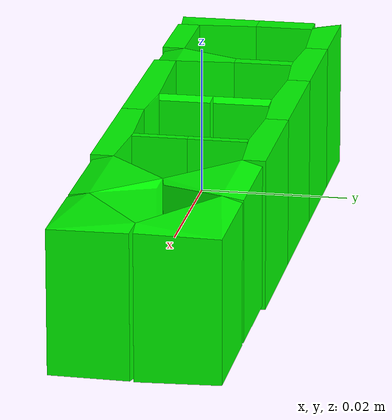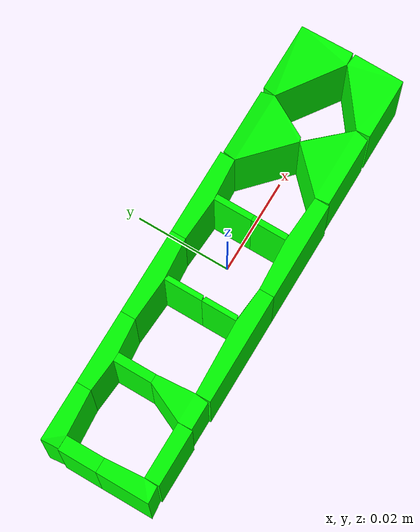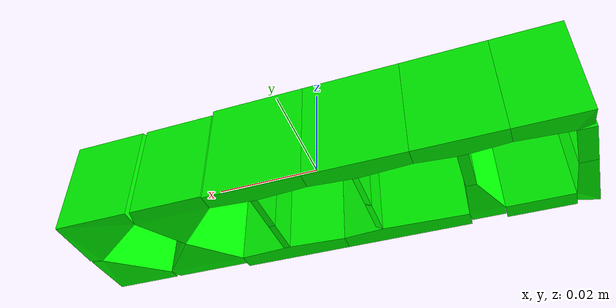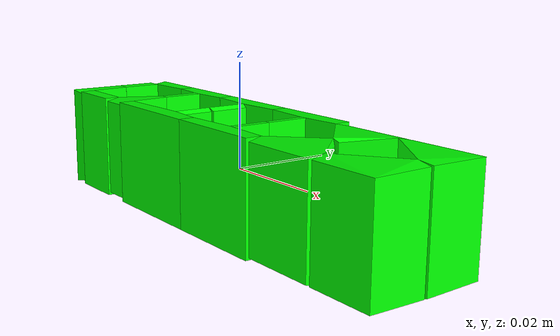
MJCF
<mujoco model="shapenet4-10">
  <asset>
    <mesh file="meshes/shapenet4-10/shapenet4-10_0.stl" name="shapenet4-10_0" scale="0.1 0.1 0.1"/>
    <mesh file="meshes/shapenet4-10/shapenet4-10_1.stl" name="shapenet4-10_1" scale="0.1 0.1 0.1"/>
    <mesh file="meshes/shapenet4-10/shapenet4-10_2.stl" name="shapenet4-10_2" scale="0.1 0.1 0.1"/>
    <mesh file="meshes/shapenet4-10/shapenet4-10_3.stl" name="shapenet4-10_3" scale="0.1 0.1 0.1"/>
    <mesh file="meshes/shapenet4-10/shapenet4-10_4.stl" name="shapenet4-10_4" scale="0.1 0.1 0.1"/>
    <mesh file="meshes/shapenet4-10/shapenet4-10_5.stl" name="shapenet4-10_5" scale="0.1 0.1 0.1"/>
    <mesh file="meshes/shapenet4-10/shapenet4-10_6.stl" name="shapenet4-10_6" scale="0.1 0.1 0.1"/>
    <mesh file="meshes/shapenet4-10/shapenet4-10_7.stl" name="shapenet4-10_7" scale="0.1 0.1 0.1"/>
    <mesh file="meshes/shapenet4-10/shapenet4-10_8.stl" name="shapenet4-10_8" scale="0.1 0.1 0.1"/>
    <mesh file="meshes/shapenet4-10/shapenet4-10_9.stl" name="shapenet4-10_9" scale="0.1 0.1 0.1"/>
    <mesh file="meshes/shapenet4-10/shapenet4-10_10.stl" name="shapenet4-10_10" scale="0.1 0.1 0.1"/>
    <mesh file="meshes/shapenet4-10/shapenet4-10_11.stl" name="shapenet4-10_11" scale="0.1 0.1 0.1"/>
    <mesh file="meshes/shapenet4-10/shapenet4-10_12.stl" name="shapenet4-10_12" scale="0.1 0.1 0.1"/>
    <mesh file="meshes/shapenet4-10/shapenet4-10_13.stl" name="shapenet4-10_13" scale="0.1 0.1 0.1"/>
    <mesh file="meshes/shapenet4-10/shapenet4-10_14.stl" name="shapenet4-10_14" scale="0.1 0.1 0.1"/>
    <mesh file="meshes/shapenet4-10/shapenet4-10_15.stl" name="shapenet4-10_15" scale="0.1 0.1 0.1"/>
    <mesh file="meshes/shapenet4-10/shapenet4-10_16.stl" name="shapenet4-10_16" scale="0.1 0.1 0.1"/>
    <mesh file="meshes/shapenet4-10/shapenet4-10_17.stl" name="shapenet4-10_17" scale="0.1 0.1 0.1"/>
    <mesh file="meshes/shapenet4-10/shapenet4-10_18.stl" name="shapenet4-10_18" scale="0.1 0.1 0.1"/>
  </asset>
  <worldbody>
    <body>
      <body name="collision">
        <geom pos="0 0 0" mesh="shapenet4-10_0" type="mesh" solimp="0.998 0.998 0.001" solref="0.001 1" density="100" friction="0.95 0.3 0.1" rgba="0 1 0 1" group="1" condim="4"/>
        <geom pos="0 0 0" mesh="shapenet4-10_1" type="mesh" solimp="0.998 0.998 0.001" solref="0.001 1" density="100" friction="0.95 0.3 0.1" rgba="0 1 0 1" group="1" condim="4"/>
        <geom pos="0 0 0" mesh="shapenet4-10_2" type="mesh" solimp="0.998 0.998 0.001" solref="0.001 1" density="100" friction="0.95 0.3 0.1" rgba="0 1 0 1" group="1" condim="4"/>
        <geom pos="0 0 0" mesh="shapenet4-10_3" type="mesh" solimp="0.998 0.998 0.001" solref="0.001 1" density="100" friction="0.95 0.3 0.1" rgba="0 1 0 1" group="1" condim="4"/>
        <geom pos="0 0 0" mesh="shapenet4-10_4" type="mesh" solimp="0.998 0.998 0.001" solref="0.001 1" density="100" friction="0.95 0.3 0.1" rgba="0 1 0 1" group="1" condim="4"/>
        <geom pos="0 0 0" mesh="shapenet4-10_5" type="mesh" solimp="0.998 0.998 0.001" solref="0.001 1" density="100" friction="0.95 0.3 0.1" rgba="0 1 0 1" group="1" condim="4"/>
        <geom pos="0 0 0" mesh="shapenet4-10_6" type="mesh" solimp="0.998 0.998 0.001" solref="0.001 1" density="100" friction="0.95 0.3 0.1" rgba="0 1 0 1" group="1" condim="4"/>
        <geom pos="0 0 0" mesh="shapenet4-10_7" type="mesh" solimp="0.998 0.998 0.001" solref="0.001 1" density="100" friction="0.95 0.3 0.1" rgba="0 1 0 1" group="1" condim="4"/>
        <geom pos="0 0 0" mesh="shapenet4-10_8" type="mesh" solimp="0.998 0.998 0.001" solref="0.001 1" density="100" friction="0.95 0.3 0.1" rgba="0 1 0 1" group="1" condim="4"/>
        <geom pos="0 0 0" mesh="shapenet4-10_9" type="mesh" solimp="0.998 0.998 0.001" solref="0.001 1" density="100" friction="0.95 0.3 0.1" rgba="0 1 0 1" group="1" condim="4"/>
        <geom pos="0 0 0" mesh="shapenet4-10_10" type="mesh" solimp="0.998 0.998 0.001" solref="0.001 1" density="100" friction="0.95 0.3 0.1" rgba="0 1 0 1" group="1" condim="4"/>
        <geom pos="0 0 0" mesh="shapenet4-10_11" type="mesh" solimp="0.998 0.998 0.001" solref="0.001 1" density="100" friction="0.95 0.3 0.1" rgba="0 1 0 1" group="1" condim="4"/>
        <geom pos="0 0 0" mesh="shapenet4-10_12" type="mesh" solimp="0.998 0.998 0.001" solref="0.001 1" density="100" friction="0.95 0.3 0.1" rgba="0 1 0 1" group="1" condim="4"/>
        <geom pos="0 0 0" mesh="shapenet4-10_13" type="mesh" solimp="0.998 0.998 0.001" solref="0.001 1" density="100" friction="0.95 0.3 0.1" rgba="0 1 0 1" group="1" condim="4"/>
        <geom pos="0 0 0" mesh="shapenet4-10_14" type="mesh" solimp="0.998 0.998 0.001" solref="0.001 1" density="100" friction="0.95 0.3 0.1" rgba="0 1 0 1" group="1" condim="4"/>
        <geom pos="0 0 0" mesh="shapenet4-10_15" type="mesh" solimp="0.998 0.998 0.001" solref="0.001 1" density="100" friction="0.95 0.3 0.1" rgba="0 1 0 1" group="1" condim="4"/>
        <geom pos="0 0 0" mesh="shapenet4-10_16" type="mesh" solimp="0.998 0.998 0.001" solref="0.001 1" density="100" friction="0.95 0.3 0.1" rgba="0 1 0 1" group="1" condim="4"/>
        <geom pos="0 0 0" mesh="shapenet4-10_17" type="mesh" solimp="0.998 0.998 0.001" solref="0.001 1" density="100" friction="0.95 0.3 0.1" rgba="0 1 0 1" group="1" condim="4"/>
        <geom pos="0 0 0" mesh="shapenet4-10_18" type="mesh" solimp="0.998 0.998 0.001" solref="0.001 1" density="100" friction="0.95 0.3 0.1" rgba="0 1 0 1" group="1" condim="4"/>
      </body>
      <body name="visual">
        <geom pos="0 0 0" mesh="shapenet4-10_0" type="mesh" rgba="0 1 0 1" conaffinity="0" contype="0" group="0" mass="0.0001"/>
        <geom pos="0 0 0" mesh="shapenet4-10_1" type="mesh" rgba="0 1 0 1" conaffinity="0" contype="0" group="0" mass="0.0001"/>
        <geom pos="0 0 0" mesh="shapenet4-10_2" type="mesh" rgba="0 1 0 1" conaffinity="0" contype="0" group="0" mass="0.0001"/>
        <geom pos="0 0 0" mesh="shapenet4-10_3" type="mesh" rgba="0 1 0 1" conaffinity="0" contype="0" group="0" mass="0.0001"/>
        <geom pos="0 0 0" mesh="shapenet4-10_4" type="mesh" rgba="0 1 0 1" conaffinity="0" contype="0" group="0" mass="0.0001"/>
        <geom pos="0 0 0" mesh="shapenet4-10_5" type="mesh" rgba="0 1 0 1" conaffinity="0" contype="0" group="0" mass="0.0001"/>
        <geom pos="0 0 0" mesh="shapenet4-10_6" type="mesh" rgba="0 1 0 1" conaffinity="0" contype="0" group="0" mass="0.0001"/>
        <geom pos="0 0 0" mesh="shapenet4-10_7" type="mesh" rgba="0 1 0 1" conaffinity="0" contype="0" group="0" mass="0.0001"/>
        <geom pos="0 0 0" mesh="shapenet4-10_8" type="mesh" rgba="0 1 0 1" conaffinity="0" contype="0" group="0" mass="0.0001"/>
        <geom pos="0 0 0" mesh="shapenet4-10_9" type="mesh" rgba="0 1 0 1" conaffinity="0" contype="0" group="0" mass="0.0001"/>
        <geom pos="0 0 0" mesh="shapenet4-10_10" type="mesh" rgba="0 1 0 1" conaffinity="0" contype="0" group="0" mass="0.0001"/>
        <geom pos="0 0 0" mesh="shapenet4-10_11" type="mesh" rgba="0 1 0 1" conaffinity="0" contype="0" group="0" mass="0.0001"/>
        <geom pos="0 0 0" mesh="shapenet4-10_12" type="mesh" rgba="0 1 0 1" conaffinity="0" contype="0" group="0" mass="0.0001"/>
        <geom pos="0 0 0" mesh="shapenet4-10_13" type="mesh" rgba="0 1 0 1" conaffinity="0" contype="0" group="0" mass="0.0001"/>
        <geom pos="0 0 0" mesh="shapenet4-10_14" type="mesh" rgba="0 1 0 1" conaffinity="0" contype="0" group="0" mass="0.0001"/>
        <geom pos="0 0 0" mesh="shapenet4-10_15" type="mesh" rgba="0 1 0 1" conaffinity="0" contype="0" group="0" mass="0.0001"/>
        <geom pos="0 0 0" mesh="shapenet4-10_16" type="mesh" rgba="0 1 0 1" conaffinity="0" contype="0" group="0" mass="0.0001"/>
        <geom pos="0 0 0" mesh="shapenet4-10_17" type="mesh" rgba="0 1 0 1" conaffinity="0" contype="0" group="0" mass="0.0001"/>
        <geom pos="0 0 0" mesh="shapenet4-10_18" type="mesh" rgba="0 1 0 1" conaffinity="0" contype="0" group="0" mass="0.0001"/>
      </body>
      <site rgba="0 0 0 0" size="0.005" pos="0 0 -0.06" name="bottom_site"/>
      <site rgba="0 0 0 0" size="0.005" pos="0 0 0.04" name="top_site"/>
      <site rgba="0 0 0 0" size="0.005" pos="0.025 0.025 0" name="horizontal_radius_site"/>
    </body>
  </worldbody>
</mujoco>
